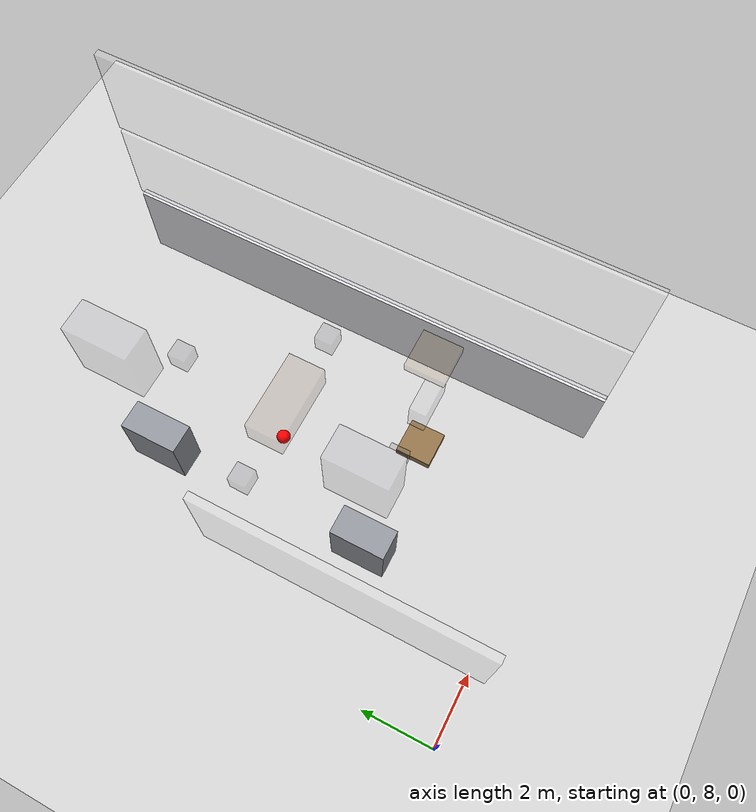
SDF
<sdf version="1.7">
 <world name="generated_world">
  <include><uri>model://sun</uri></include>
  <include><uri>model://ground_plane</uri></include>
  <model name="generated_building">
   <static>true</static>
   <link name="floor_0_room_1_east_wall">
    <pose>9.4100 14.8650 1.2250 0.0000 0.0000 0.0000</pose>
    <collision name="floor_0_room_1_east_wall_collision">
     <geometry><box><size>0.1800 14.0300 2.4500</size></box></geometry>
    </collision>
    <visual name="floor_0_room_1_east_wall_visual">
     <geometry><box><size>0.1800 14.0300 2.4500</size></box></geometry>
     <material><ambient>0.86 0.86 0.88 1</ambient><diffuse>0.86 0.86 0.88 1</diffuse></material>
    </visual>
    <gravity>false</gravity>
   </link>
   <link name="floor_0_room_1_rack_a">
    <pose>3.6000 17.9225 0.9000 0.0000 0.0000 0.0000</pose>
    <collision name="floor_0_room_1_rack_a_collision">
     <geometry><box><size>0.8000 1.6000 1.8000</size></box></geometry>
    </collision>
    <visual name="floor_0_room_1_rack_a_visual">
     <geometry><box><size>0.8000 1.6000 1.8000</size></box></geometry>
     <material><ambient>0.56 0.57 0.60 1</ambient><diffuse>0.56 0.57 0.60 1</diffuse></material>
    </visual>
    <gravity>false</gravity>
   </link>
   <link name="floor_0_room_1_rack_c">
    <pose>3.6000 11.8075 0.9000 0.0000 0.0000 0.0000</pose>
    <collision name="floor_0_room_1_rack_c_collision">
     <geometry><box><size>0.8000 1.5000 1.8000</size></box></geometry>
    </collision>
    <visual name="floor_0_room_1_rack_c_visual">
     <geometry><box><size>0.8000 1.5000 1.8000</size></box></geometry>
     <material><ambient>0.56 0.57 0.60 1</ambient><diffuse>0.56 0.57 0.60 1</diffuse></material>
    </visual>
    <gravity>false</gravity>
   </link>
   <link name="floor_0_room_1_pallet">
    <pose>7.0000 11.8075 0.1200 0.0000 0.0000 0.0000</pose>
    <collision name="floor_0_room_1_pallet_collision">
     <geometry><box><size>1.0000 1.0000 0.2400</size></box></geometry>
    </collision>
    <visual name="floor_0_room_1_pallet_visual">
     <geometry><box><size>1.0000 1.0000 0.2400</size></box></geometry>
     <material><ambient>0.56 0.44 0.28 1</ambient><diffuse>0.56 0.44 0.28 1</diffuse></material>
    </visual>
    <gravity>false</gravity>
   </link>
   <link name="floor_1_room_1_east_wall">
    <pose>9.4100 14.8650 3.8250 0.0000 0.0000 0.0000</pose>
    <collision name="floor_1_room_1_east_wall_collision">
     <geometry><box><size>0.1800 14.0300 2.4500</size></box></geometry>
    </collision>
    <visual name="floor_1_room_1_east_wall_visual">
     <geometry><box><size>0.1800 14.0300 2.4500</size></box></geometry>
     <material><ambient>0.86 0.86 0.88 1</ambient><diffuse>0.86 0.86 0.88 1</diffuse></material>
     <transparency>0.80</transparency>
    </visual>
    <gravity>false</gravity>
   </link>
   <link name="floor_1_room_1_table">
    <pose>5.3000 14.8650 3.0500 0.0000 0.0000 0.0000</pose>
    <collision name="floor_1_room_1_table_collision">
     <geometry><box><size>2.2000 1.0000 0.7500</size></box></geometry>
    </collision>
    <visual name="floor_1_room_1_table_visual">
     <geometry><box><size>2.2000 1.0000 0.7500</size></box></geometry>
     <material><ambient>0.50 0.38 0.28 1</ambient><diffuse>0.50 0.38 0.28 1</diffuse></material>
     <transparency>0.80</transparency>
    </visual>
    <gravity>false</gravity>
   </link>
   <link name="floor_1_room_1_chair_north">
    <pose>5.3000 17.9225 2.8800 0.0000 0.0000 0.0000</pose>
    <collision name="floor_1_room_1_chair_north_collision">
     <geometry><box><size>0.5000 0.5000 0.5500</size></box></geometry>
    </collision>
    <visual name="floor_1_room_1_chair_north_visual">
     <geometry><box><size>0.5000 0.5000 0.5500</size></box></geometry>
     <material><ambient>0.30 0.30 0.34 1</ambient><diffuse>0.30 0.30 0.34 1</diffuse></material>
     <transparency>0.80</transparency>
    </visual>
    <gravity>false</gravity>
   </link>
   <link name="floor_1_room_1_chair_south">
    <pose>5.3000 11.8075 2.8800 0.0000 0.0000 0.0000</pose>
    <collision name="floor_1_room_1_chair_south_collision">
     <geometry><box><size>0.5000 0.5000 0.5500</size></box></geometry>
    </collision>
    <visual name="floor_1_room_1_chair_south_visual">
     <geometry><box><size>0.5000 0.5000 0.5500</size></box></geometry>
     <material><ambient>0.30 0.30 0.34 1</ambient><diffuse>0.30 0.30 0.34 1</diffuse></material>
     <transparency>0.80</transparency>
    </visual>
    <gravity>false</gravity>
   </link>
   <link name="floor_1_room_1_chair_west">
    <pose>3.1500 14.8650 2.8800 0.0000 0.0000 1.5700</pose>
    <collision name="floor_1_room_1_chair_west_collision">
     <geometry><box><size>0.5000 0.5000 0.5500</size></box></geometry>
    </collision>
    <visual name="floor_1_room_1_chair_west_visual">
     <geometry><box><size>0.5000 0.5000 0.5500</size></box></geometry>
     <material><ambient>0.30 0.30 0.34 1</ambient><diffuse>0.30 0.30 0.34 1</diffuse></material>
     <transparency>0.80</transparency>
    </visual>
    <gravity>false</gravity>
   </link>
   <link name="floor_1_room_1_chair_east">
    <pose>7.4500 14.8650 2.8800 0.0000 0.0000 1.5700</pose>
    <collision name="floor_1_room_1_chair_east_collision">
     <geometry><box><size>0.5000 0.5000 0.5500</size></box></geometry>
    </collision>
    <visual name="floor_1_room_1_chair_east_visual">
     <geometry><box><size>0.5000 0.5000 0.5500</size></box></geometry>
     <material><ambient>0.30 0.30 0.34 1</ambient><diffuse>0.30 0.30 0.34 1</diffuse></material>
     <transparency>0.80</transparency>
    </visual>
    <gravity>false</gravity>
   </link>
   <link name="floor_1_room_1_credenza">
    <pose>7.0000 11.8075 3.0500 0.0000 0.0000 0.0000</pose>
    <collision name="floor_1_room_1_credenza_collision">
     <geometry><box><size>1.2000 0.4500 0.9000</size></box></geometry>
    </collision>
    <visual name="floor_1_room_1_credenza_visual">
     <geometry><box><size>1.2000 0.4500 0.9000</size></box></geometry>
     <material><ambient>0.72 0.72 0.74 1</ambient><diffuse>0.72 0.72 0.74 1</diffuse></material>
     <transparency>0.80</transparency>
    </visual>
    <gravity>false</gravity>
   </link>
   <link name="floor_2_room_1_corridor_wall_lower">
    <pose>1.1900 11.0575 6.4250 0.0000 0.0000 0.0000</pose>
    <collision name="floor_2_room_1_corridor_wall_lower_collision">
     <geometry><box><size>0.1800 6.4150 2.4500</size></box></geometry>
    </collision>
    <visual name="floor_2_room_1_corridor_wall_lower_visual">
     <geometry><box><size>0.1800 6.4150 2.4500</size></box></geometry>
     <material><ambient>0.86 0.86 0.88 1</ambient><diffuse>0.86 0.86 0.88 1</diffuse></material>
     <transparency>0.80</transparency>
    </visual>
    <gravity>false</gravity>
   </link>
   <link name="floor_2_room_1_east_wall">
    <pose>9.4100 14.8650 6.4250 0.0000 0.0000 0.0000</pose>
    <collision name="floor_2_room_1_east_wall_collision">
     <geometry><box><size>0.1800 14.0300 2.4500</size></box></geometry>
    </collision>
    <visual name="floor_2_room_1_east_wall_visual">
     <geometry><box><size>0.1800 14.0300 2.4500</size></box></geometry>
     <material><ambient>0.86 0.86 0.88 1</ambient><diffuse>0.86 0.86 0.88 1</diffuse></material>
     <transparency>0.80</transparency>
    </visual>
    <gravity>false</gravity>
   </link>
   <link name="floor_2_room_1_rack_a">
    <pose>3.6000 17.9225 6.1000 0.0000 0.0000 0.0000</pose>
    <collision name="floor_2_room_1_rack_a_collision">
     <geometry><box><size>0.8000 1.6000 1.8000</size></box></geometry>
    </collision>
    <visual name="floor_2_room_1_rack_a_visual">
     <geometry><box><size>0.8000 1.6000 1.8000</size></box></geometry>
     <material><ambient>0.56 0.57 0.60 1</ambient><diffuse>0.56 0.57 0.60 1</diffuse></material>
     <transparency>0.80</transparency>
    </visual>
    <gravity>false</gravity>
   </link>
   <link name="floor_2_room_1_rack_c">
    <pose>3.6000 11.8075 6.1000 0.0000 0.0000 0.0000</pose>
    <collision name="floor_2_room_1_rack_c_collision">
     <geometry><box><size>0.8000 1.5000 1.8000</size></box></geometry>
    </collision>
    <visual name="floor_2_room_1_rack_c_visual">
     <geometry><box><size>0.8000 1.5000 1.8000</size></box></geometry>
     <material><ambient>0.56 0.57 0.60 1</ambient><diffuse>0.56 0.57 0.60 1</diffuse></material>
     <transparency>0.80</transparency>
    </visual>
    <gravity>false</gravity>
   </link>
   <link name="floor_2_room_1_pallet">
    <pose>7.0000 11.8075 5.3200 0.0000 0.0000 0.0000</pose>
    <collision name="floor_2_room_1_pallet_collision">
     <geometry><box><size>1.0000 1.0000 0.2400</size></box></geometry>
    </collision>
    <visual name="floor_2_room_1_pallet_visual">
     <geometry><box><size>1.0000 1.0000 0.2400</size></box></geometry>
     <material><ambient>0.56 0.44 0.28 1</ambient><diffuse>0.56 0.44 0.28 1</diffuse></material>
     <transparency>0.80</transparency>
    </visual>
    <gravity>false</gravity>
   </link>
  </model>
  <model name="danger_red_sphere_00">
   <static>true</static>
   <pose>3.767184 13.854665 5.350000 0.000000 0.000000 0.000000</pose>
   <link name="link">
    <collision name="collision"><geometry><sphere><radius>0.150</radius></sphere></geometry></collision>
    <visual name="visual">
     <geometry><sphere><radius>0.150</radius></sphere></geometry>
     <material><ambient>1.0 0.0 0.0 1.0</ambient><diffuse>1.0 0.0 0.0 1.0</diffuse></material>
    </visual>
   </link>
  </model>
 </world>
</sdf>
